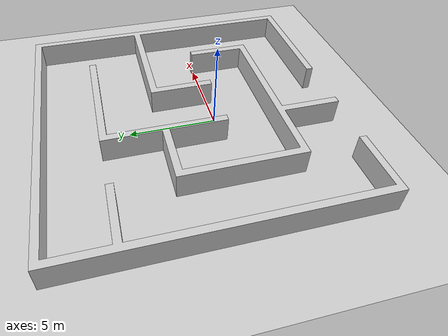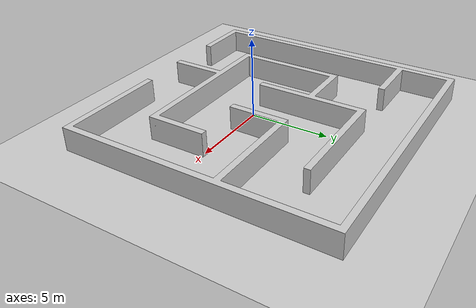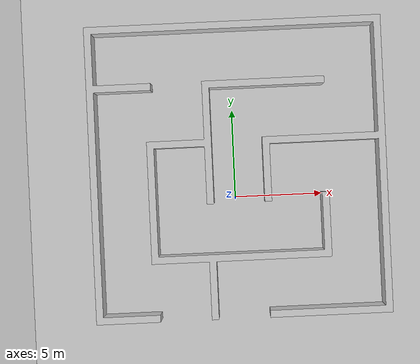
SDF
<?xml version="1.0"?>
<sdf version="1.6">
  <world name="maze">
    <physics name="4ms" type="ignored">
      <max_step_size>0.004</max_step_size>
      <real_time_factor>1</real_time_factor>
    </physics>

    <plugin filename="libignition-gazebo-physics-system.so" name="ignition::gazebo::systems::Physics"/>
    <plugin filename="libignition-gazebo-user-commands-system.so" name="ignition::gazebo::systems::UserCommands"/>
    <plugin filename="libignition-gazebo-scene-broadcaster-system.so" name="ignition::gazebo::systems::SceneBroadcaster"/>

    <plugin filename="ignition-gazebo-contact-system" name="ignition::gazebo::systems::Contact"/>
    <plugin filename="libignition-gazebo-imu-system.so" name="ignition::gazebo::systems::Imu"/>
    <plugin filename="ignition-gazebo-magnetometer-system" name="ignition::gazebo::systems::Magnetometer"/>

    <scene>
      <grid>false</grid>
    </scene>

    <gui fullscreen="0">
      <!-- 3D scene -->
      <plugin filename="GzScene3D" name="3D View">
        <ignition-gui>
          <title>3D View</title>
          <property type="bool" key="showTitleBar">false</property>
          <property type="string" key="state">docked</property>
        </ignition-gui>
        <engine>ogre2</engine>
        <scene>scene</scene>
        <ambient_light>0.7 0.7 0.7</ambient_light>
        <background_color>0.8 0.8 0.8</background_color>
        <camera_pose>1 1 1 0 0.5 3.92</camera_pose>
      </plugin>

      <!-- World control -->
      <plugin filename="WorldControl" name="World control">
        <ignition-gui>
          <title>World control</title>
          <property type="bool" key="showTitleBar">false</property>
          <property type="bool" key="resizable">false</property>
          <property type="double" key="height">72</property>
          <property type="double" key="width">121</property>
          <property type="double" key="z">1</property>
          <property type="string" key="state">floating</property>
          <anchors target="3D View">
            <line own="left" target="left"/>
            <line own="bottom" target="bottom"/>
          </anchors>
        </ignition-gui>
        <play_pause>true</play_pause>
        <step>true</step>
        <start_paused>true</start_paused>

      </plugin>
      <!-- World statistics -->
      <plugin filename="WorldStats" name="World stats">
        <ignition-gui>
          <title>World stats</title>
          <property type="bool" key="showTitleBar">false</property>
          <property type="bool" key="resizable">false</property>
          <property type="double" key="height">110</property>
          <property type="double" key="width">290</property>
          <property type="double" key="z">1</property>
          <property type="string" key="state">floating</property>
          <anchors target="3D View">
            <line own="right" target="right"/>
            <line own="bottom" target="bottom"/>
          </anchors>
        </ignition-gui>
        <sim_time>true</sim_time>
        <real_time>true</real_time>
        <real_time_factor>true</real_time_factor>
        <iterations>true</iterations>
      </plugin>

    </gui>
    <light type="directional" name="sun">
      <pose>0 0 10 0 0 0</pose>
      <diffuse>0.8 0.8 0.8 1</diffuse>
      <specular>0.2 0.2 0.2 1</specular>
      <attenuation>
        <range>1000</range>
        <linear>0.01</linear>
        <constant>0.9</constant>
        <quadratic>0.001</quadratic>
      </attenuation>
      <direction>-0.5 0.1 -0.9</direction>
      <cast_shadows>true</cast_shadows>
    </light>

    <model name="labyrint">
    <static>1</static>
      <pose>0 2 0 0 0 0</pose>
      <link name='labyrint'>
        <collision name='collision'>
          <geometry>
            <mesh>
              <uri>models/maze/maze.dae</uri>
              <scale>2 2 1</scale>
            </mesh>
          </geometry>
          <max_contacts>20</max_contacts>
          <surface>
            <contact>
              <ode/>
            </contact>
            <friction>
              <torsional>
                <ode/>
              </torsional>
              <ode/>
            </friction>
          </surface>
        </collision>
        <visual name='visual'>
          <geometry>
            <mesh>
              <uri>models/maze/maze.dae</uri>
              <scale>2 2 1</scale>
            </mesh>
          </geometry>
        </visual>
        <self_collide>0</self_collide>
        <enable_wind>0</enable_wind>
        <kinematic>0</kinematic>
      </link>
    </model>

    <model name='ground_plane'>
      <static>true</static>
      <link name='link'>
        <collision name='collision'>
          <geometry>
            <plane>
              <normal>0 0 1</normal>
              <size>100 100</size>
            </plane>
          </geometry>
          <surface>
            <friction>
              <ode/>
            </friction>
            <bounce/>
            <contact/>
          </surface>
        </collision>
        <visual name='visual'>
          <geometry>
            <plane>
              <normal>0 0 1</normal>
              <size>100 100</size>
            </plane>
          </geometry>
          <material>
            <ambient>0.8 0.8 0.8 1</ambient>
            <diffuse>0.8 0.8 0.8 1</diffuse>
            <specular>0.8 0.8 0.8 1</specular>
          </material>
        </visual>
        <pose>0 0 0 0 -0 0</pose>
        <inertial>
          <pose>0 0 0 0 -0 0</pose>
          <mass>1</mass>
          <inertia>
            <ixx>1</ixx>
            <ixy>0</ixy>
            <ixz>0</ixz>
            <iyy>1</iyy>
            <iyz>0</iyz>
            <izz>1</izz>
          </inertia>
        </inertial>
        <enable_wind>false</enable_wind>
      </link>
      <pose>0 0 0 0 -0 0</pose>
      <self_collide>false</self_collide>
    </model>

  </world>
</sdf>
